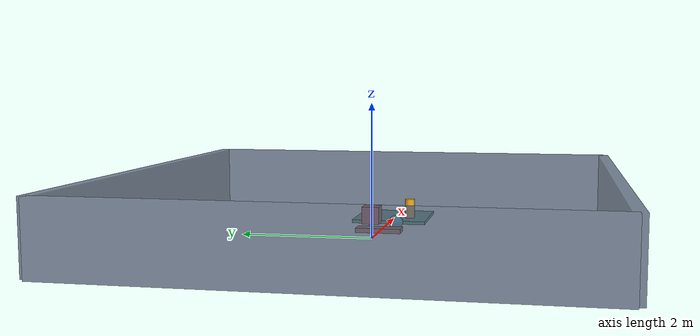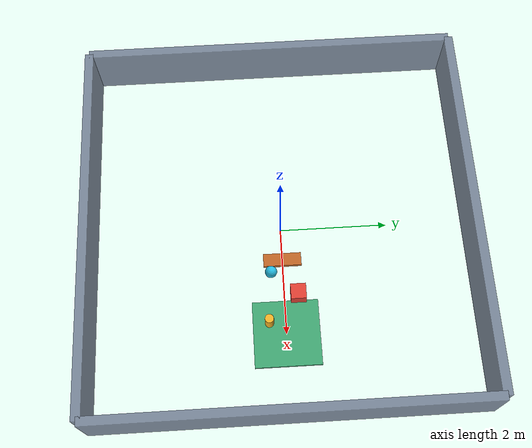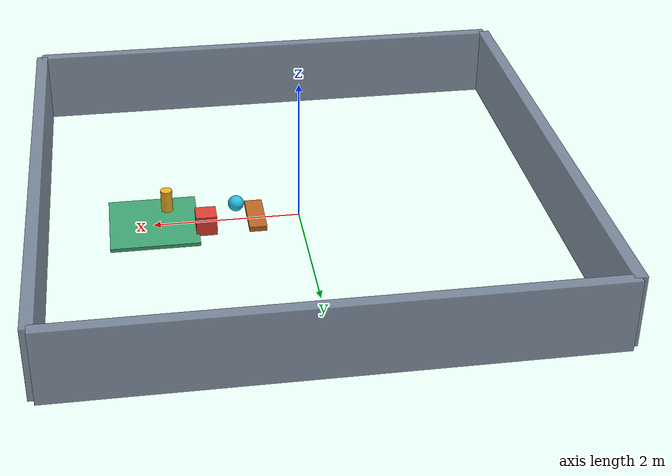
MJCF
<!-- Virtual Asimov 1 - Enclosed Training Arena Environment -->
<!-- Direct MuJoCo XML with boundary perimeter walls and interactive physics bodies -->
<mujoco>
  <worldbody>
    <!-- Perimeter Boundary Walls -->
    <geom name="arena_wall_north" type="box" size="3.5 0.08 0.5" pos="0 3.5 0.5" rgba="0.4 0.45 0.55 0.8" />
    <geom name="arena_wall_south" type="box" size="3.5 0.08 0.5" pos="0 -3.5 0.5" rgba="0.4 0.45 0.55 0.8" />
    <geom name="arena_wall_east" type="box" size="0.08 3.5 0.5" pos="3.5 0 0.5" rgba="0.4 0.45 0.55 0.8" />
    <geom name="arena_wall_west" type="box" size="0.08 3.5 0.5" pos="-3.5 0 0.5" rgba="0.4 0.45 0.55 0.8" />

    <!-- Static Low Platform -->
    <geom name="arena_low_platform" type="box" size="0.6 0.6 0.025" pos="2.0 0.0 0.025" rgba="0.25 0.65 0.45 1.0" />

    <!-- Dynamic 6-DoF Movable Crates and Cylinders -->
    <body name="arena_box_red" pos="1.3 0.25 0.16">
      <freejoint name="arena_box_red_joint" />
      <geom name="arena_box_red_geom" type="box" size="0.14 0.14 0.14" mass="3.5" friction="1.0 0.005 0.0001" rgba="0.88 0.25 0.20 1.0" />
    </body>

    <body name="arena_ball_cyan" pos="0.85 -0.22 0.12">
      <freejoint name="arena_ball_cyan_joint" />
      <geom name="arena_ball_cyan_geom" type="sphere" size="0.11" mass="1.8" friction="0.8 0.005 0.0001" rgba="0.15 0.75 0.90 1.0" />
    </body>

    <body name="arena_cylinder_gold" pos="1.8 -0.30 0.18">
      <freejoint name="arena_cylinder_gold_joint" />
      <geom name="arena_cylinder_gold_geom" type="cylinder" size="0.08 0.18" mass="2.8" friction="1.0 0.005 0.0001" rgba="0.95 0.70 0.15 1.0" />
    </body>

    <body name="arena_trip_plank" pos="0.60 0.0 0.035">
      <freejoint name="arena_trip_plank_joint" />
      <geom name="arena_trip_plank_geom" type="box" size="0.12 0.35 0.035" mass="4.0" friction="1.2 0.005 0.0001" rgba="0.75 0.40 0.15 1.0" />
    </body>
  </worldbody>
</mujoco>
